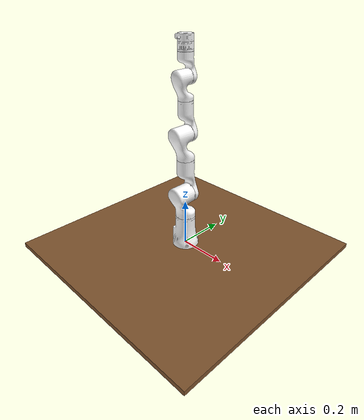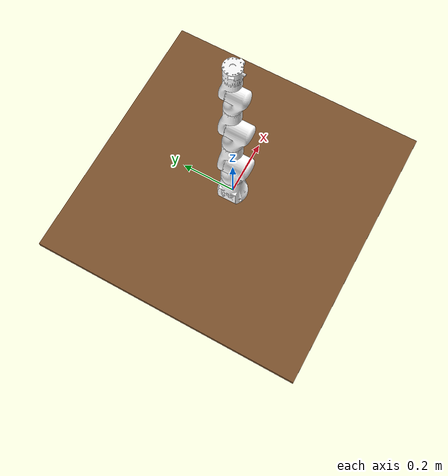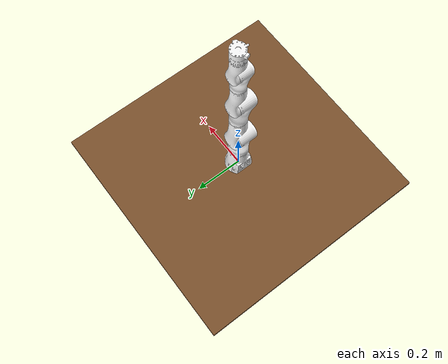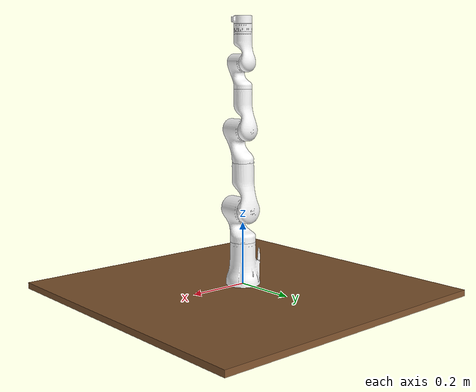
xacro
<?xml version="1.0" encoding="utf-8"?>
<robot name="rm_75" xmlns:xacro="http://www.ros.org/wiki/xacro">
  <xacro:include filename="$(find rm_75_description)/urdf/rm_75.transmission.xacro"/>
  <xacro:include filename="$(find rm_75_description)/urdf/rm_75.gazebo.xacro"/>
  <!-- Inertial matrix -->
  <xacro:macro name="inertial_matrix" params="mass">
    <inertial>
      <mass value="${mass}" />
      <inertia ixx="1.0" ixy="0.0" ixz="0.0" iyy="0.5" iyz="0.0" izz="1.0" />
	</inertial>
  </xacro:macro>
  <xacro:macro name="Box_inertial_matrix" params="m l w h">
    <inertial>
      <mass value="${m}" />
        <inertia ixx="${m*(h*h + l*l)/12}" ixy = "0" ixz = "0"
          iyy="${m*(w*w + l*l)/12}" iyz= "0"
          izz="${m*(w*w + h*h)/12}" />
    </inertial>
  </xacro:macro>

  <link name="dummy">
  </link>

  <joint name="dummy_joint" type="fixed">
    <parent link="dummy" />
    <child link="base_link" />
  </joint>
  <!-- ///////////////////////////////////////   bottom_joint   ////////////////////////////////////////// -->
  <joint name="bottom_joint" type="fixed">
    <origin xyz="0 0 0" rpy="0 0 0" />
    <parent link="base_link"/>
    <child link="bottom_link"/>
  </joint>
  <link name="bottom_link">
    <visual>
      <origin xyz=" 0 0 -0.02"  rpy="0 0 0"/>
      <geometry>
        <box size="1 1 0.02" />
      </geometry>
      <material name="Brown" />
    </visual>
    <collision>
      <origin xyz=" 0 0 -0.02"  rpy="0 0 0"/>
      <geometry>
        <box size="1 1 0.02" />
      </geometry>
    </collision>
    <xacro:Box_inertial_matrix m="500" l="1" w="1" h="0.02"/>
  </link>

  <link
    name="base_link">
    <inertial>
      <origin
        xyz="0.000433268851866144 3.54527840972405E-05 0.0599427623574736"
        rpy="0 0 0" />
      <mass
        value="0.841071174772543" />
      <inertia
        ixx="0.00172611149818605"
        ixy="2.52724703312125E-06"
        ixz="3.67689528877993E-05"
        iyy="0.00170987425756066"
        iyz="-1.68009023667311E-06"
        izz="0.000904023916742301" />
    </inertial>
    <visual>
      <origin
        xyz="0 0 0"
        rpy="0 0 0" />
      <geometry>
        <mesh
          filename="package://rm_75_description/meshes/base_link.STL" />
      </geometry>
      <material
        name="">
        <color
          rgba="1 1 1 1" />
      </material>
    </visual>
    <collision>
      <origin
        xyz="0 0 0"
        rpy="0 0 0" />
      <geometry>
        <mesh
          filename="package://rm_75_description/meshes/base_link.STL" />
      </geometry>
    </collision>
  </link>
  <link
    name="Link1">
    <inertial>
      <origin
        xyz="0.0251854224372461 1.19160585601655E-08 -0.021107996993288"
        rpy="0 0 0" />
      <mass
        value="0.593563458735581" />
      <inertia
        ixx="0.000561352422092522"
        ixy="9.8019294192418E-09"
        ixz="-0.000211217278563478"
        iyy="0.00126614121202124"
        iyz="1.29510293158304E-08"
        izz="0.0011816817861243" />
    </inertial>
    <visual>
      <origin
        xyz="0 0 0"
        rpy="0 0 0" />
      <geometry>
        <mesh
          filename="package://rm_75_description/meshes/link1.STL" />
      </geometry>
      <material
        name="">
        <color
          rgba="1 1 1 1" />
      </material>
    </visual>
    <collision>
      <origin
        xyz="0 0 0"
        rpy="0 0 0" />
      <geometry>
        <mesh
          filename="package://rm_75_description/meshes/link1.STL" />
      </geometry>
    </collision>
  </link>
  <joint
    name="joint1"
    type="revolute">
    <origin
      xyz="0 0 0.2405"
      rpy="-1.5708 1.5708 0" />
    <parent
      link="base_link" />
    <child
      link="Link1" />
    <axis
      xyz="-1 0 0" />
    <limit
      lower="-3.1"
      upper="3.1"
      effort="60"
      velocity="3.14" />
    <dynamics
      damping="50"
      friction="1" />
  </joint>
  <link
    name="Link2">
    <inertial>
      <origin
        xyz="2.72859133252335E-07 0.011077753037361 0.0761295106490881"
        rpy="0 0 0" />
      <mass
        value="0.432849770310974" />
      <inertia
        ixx="0.00125838173873093"
        ixy="5.63146579602116E-09"
        ixz="1.33486683063366E-09"
        iyy="0.00122245448121472"
        iyz="0.000279003475762058"
        izz="0.000317474184276672" />
    </inertial>
    <visual>
      <origin
        xyz="0 0 0"
        rpy="0 0 0" />
      <geometry>
        <mesh
          filename="package://rm_75_description/meshes/link2.STL" />
      </geometry>
      <material
        name="">
        <color
          rgba="1 1 1 1" />
      </material>
    </visual>
    <collision>
      <origin
        xyz="0 0 0"
        rpy="0 0 0" />
      <geometry>
        <mesh
          filename="package://rm_75_description/meshes/link2.STL" />
      </geometry>
    </collision>
  </link>
  <joint
    name="joint2"
    type="revolute">
    <origin
      xyz="0 0 0"
      rpy="1.5708 0 -1.5708" />
    <parent
      link="Link1" />
    <child
      link="Link2" />
    <axis
      xyz="0 1 0" />
    <limit
      lower="-2.268"
      upper="2.268"
      effort="60"
      velocity="3.14" />
    <dynamics
      damping="50"
      friction="1" />
  </joint>
  <link
    name="Link3">
    <inertial>
      <origin
        xyz="6.84676164566044E-07 0.0273475408308154 -0.0235440119707943"
        rpy="0 0 0" />
      <mass
        value="0.431325495678459" />
      <inertia
        ixx="0.000794332771462568"
        ixy="1.03353218375171E-08"
        ixz="-2.32798826854953E-09"
        iyy="0.000315065343266245"
        iyz="-0.000142620540462618"
        izz="0.000730371131605455" />
    </inertial>
    <visual>
      <origin
        xyz="0 0 0"
        rpy="0 0 0" />
      <geometry>
        <mesh
          filename="package://rm_75_description/meshes/link3.STL" />
      </geometry>
      <material
        name="">
        <color
          rgba="1 1 1 1" />
      </material>
    </visual>
    <collision>
      <origin
        xyz="0 0 0"
        rpy="0 0 0" />
      <geometry>
        <mesh
          filename="package://rm_75_description/meshes/link3.STL" />
      </geometry>
    </collision>
  </link>
  <joint
    name="joint3"
    type="revolute">
    <origin
      xyz="0 0 0.256"
      rpy="-1.5708 0 0" />
    <parent
      link="Link2" />
    <child
      link="Link3" />
    <axis
      xyz="0 -1 0" />
    <limit
      lower="-3.1"
      upper="3.1"
      effort="30"
      velocity="3.92" />
    <dynamics
      damping="50"
      friction="1" />
  </joint>
  <link
    name="Link4">
    <inertial>
      <origin
        xyz="5.05312670298932E-06 0.0105690692118619 0.0595925663703773"
        rpy="0 0 0" />
      <mass
        value="0.289633681619295" />
      <inertia
        ixx="0.000637371004484591"
        ixy="-3.86643270900744E-08"
        ixz="7.05261290886955E-08"
        iyy="0.000614178164759844"
        iyz="0.000144610359942128"
        izz="0.000156483880946498" />
    </inertial>
    <visual>
      <origin
        xyz="0 0 0"
        rpy="0 0 0" />
      <geometry>
        <mesh
          filename="package://rm_75_description/meshes/link4.STL" />
      </geometry>
      <material
        name="">
        <color
          rgba="1 1 1 1" />
      </material>
    </visual>
    <collision>
      <origin
        xyz="0 0 0"
        rpy="0 0 0" />
      <geometry>
        <mesh
          filename="package://rm_75_description/meshes/link4.STL" />
      </geometry>
    </collision>
  </link>
  <joint
    name="joint4"
    type="revolute">
    <origin
      xyz="0 0 0"
      rpy="1.5708 0 0" />
    <parent
      link="Link3" />
    <child
      link="Link4" />
    <axis
      xyz="0 1 0" />
    <limit
      lower="-2.355"
      upper="2.355"
      effort="30"
      velocity="3.92" />
    <dynamics
      damping="50"
      friction="1" />
  </joint>
  <link
    name="Link5">
    <inertial>
      <origin
        xyz="1.1551661767744E-06 0.0215394748352686 -0.0180424468598241"
        rpy="0 0 0" />
      <mass
        value="0.239419768320061" />
      <inertia
        ixx="0.000285938919722783"
        ixy="2.21994116852616E-09"
        ixz="3.07101358617598E-09"
        iyy="0.00011988808279186"
        iyz="-4.4236583260078E-05"
        izz="0.000262727540304212" />
    </inertial>
    <visual>
      <origin
        xyz="0 0 0"
        rpy="0 0 0" />
      <geometry>
        <mesh
          filename="package://rm_75_description/meshes/link5.STL" />
      </geometry>
      <material
        name="">
        <color
          rgba="1 1 1 1" />
      </material>
    </visual>
    <collision>
      <origin
        xyz="0 0 0"
        rpy="0 0 0" />
      <geometry>
        <mesh
          filename="package://rm_75_description/meshes/link5.STL" />
      </geometry>
    </collision>
  </link>
  <joint
    name="joint5"
    type="revolute">
    <origin
      xyz="0 0 0.21"
      rpy="-1.5708 0 0" />
    <parent
      link="Link4" />
    <child
      link="Link5" />
    <axis
      xyz="0 -1 0" />
    <limit
      lower="-3.1"
      upper="3.1"
      effort="10"
      velocity="3.92" />
    <dynamics
      damping="50"
      friction="1" />
  </joint>
  <link
    name="Link6">
    <inertial>
      <origin
        xyz="3.19794787018954E-06 0.00736804250989373 0.0593808368101291"
        rpy="0 0 0" />
      <mass
        value="0.218799761431682" />
      <inertia
        ixx="0.000350540363914436"
        ixy="-1.7705645712277E-08"
        ixz="3.41781620449632E-08"
        iyy="0.000334482418423991"
        iyz="7.82431228462317E-05"
        izz="0.000104927867487584" />
    </inertial>
    <visual>
      <origin
        xyz="0 0 0"
        rpy="0 0 0" />
      <geometry>
        <mesh
          filename="package://rm_75_description/meshes/link6.STL" />
      </geometry>
      <material
        name="">
        <color
          rgba="1 1 1 1" />
      </material>
    </visual>
    <collision>
      <origin
        xyz="0 0 0"
        rpy="0 0 0" />
      <geometry>
        <mesh
          filename="package://rm_75_description/meshes/link6.STL" />
      </geometry>
    </collision>
  </link>
  <joint
    name="joint6"
    type="revolute">
    <origin
      xyz="0 0 0"
      rpy="1.5708 0 0" />
    <parent
      link="Link5" />
    <child
      link="Link6" />
    <axis
      xyz="0 1 0" />
    <limit
      lower="-2.233"
      upper="2.233"
      effort="10"
      velocity="3.92" />
    <dynamics
      damping="50"
      friction="1" />
  </joint>
  <link
    name="Link7">
    <inertial>
      <origin
        xyz="0.000714238382876259 -0.000396711987952758 -0.0126723660946126"
        rpy="0 0 0" />
      <mass
        value="0.0649018034311231" />
      <inertia
        ixx="2.02766547502765E-05"
        ixy="-1.32505200276848E-06"
        ixz="-2.58450915224912E-08"
        iyy="1.87986725225022E-05"
        iyz="3.39471452123283E-09"
        izz="3.17885459163081E-05" />
    </inertial>
    <visual>
      <origin
        xyz="0 0 0"
        rpy="0 0 0" />
      <geometry>
        <mesh
          filename="package://rm_75_description/meshes/link7.STL" />
      </geometry>
      <material
        name="">
        <color
          rgba="1 1 1 1" />
      </material>
    </visual>
    <collision>
      <origin
        xyz="0 0 0"
        rpy="0 0 0" />
      <geometry>
        <mesh
          filename="package://rm_75_description/meshes/link7.STL" />
      </geometry>
    </collision>
  </link>
  <joint
    name="joint7"
    type="revolute">
    <origin
      xyz="0 0 0.144"
      rpy="0 0 0" />
    <parent
      link="Link6" />
    <child
      link="Link7" />
    <axis
      xyz="0 0 1" />
    <limit
      lower="-6.28"
      upper="6.28"
      effort="10"
      velocity="3.92" />
    <dynamics
      damping="50"
      friction="1" />
  </joint>

  <!-- Transmissions for ROS Control -->
  <xacro:macro name="transmission_block" params="joint_name">
    <transmission name="tran1">
      <type>transmission_interface/SimpleTransmission</type>
      <joint name="${joint_name}">
        <hardwareInterface>hardware_interface/PositionJointInterface</hardwareInterface>
      </joint>
      <actuator name="motor1">
        <hardwareInterface>hardware_interface/PositionJointInterface</hardwareInterface>
        <mechanicalReduction>1</mechanicalReduction>
      </actuator>
    </transmission>
  </xacro:macro>

  <xacro:transmission_block joint_name="joint1"/>
  <xacro:transmission_block joint_name="joint2"/>
  <xacro:transmission_block joint_name="joint3"/>
  <xacro:transmission_block joint_name="joint4"/>
  <xacro:transmission_block joint_name="joint5"/>
  <xacro:transmission_block joint_name="joint6"/>
  <xacro:transmission_block joint_name="joint7"/>

  <!-- ros_control plugin -->
  <gazebo>
    <plugin name="gazebo_ros_control" filename="libgazebo_ros_control.so">
      <robotNamespace>/arm</robotNamespace>
      <robotSimType>gazebo_ros_control/DefaultRobotHWSim</robotSimType>
      <legacyModeNS>true</legacyModeNS>
    </plugin>
  </gazebo>
</robot>
